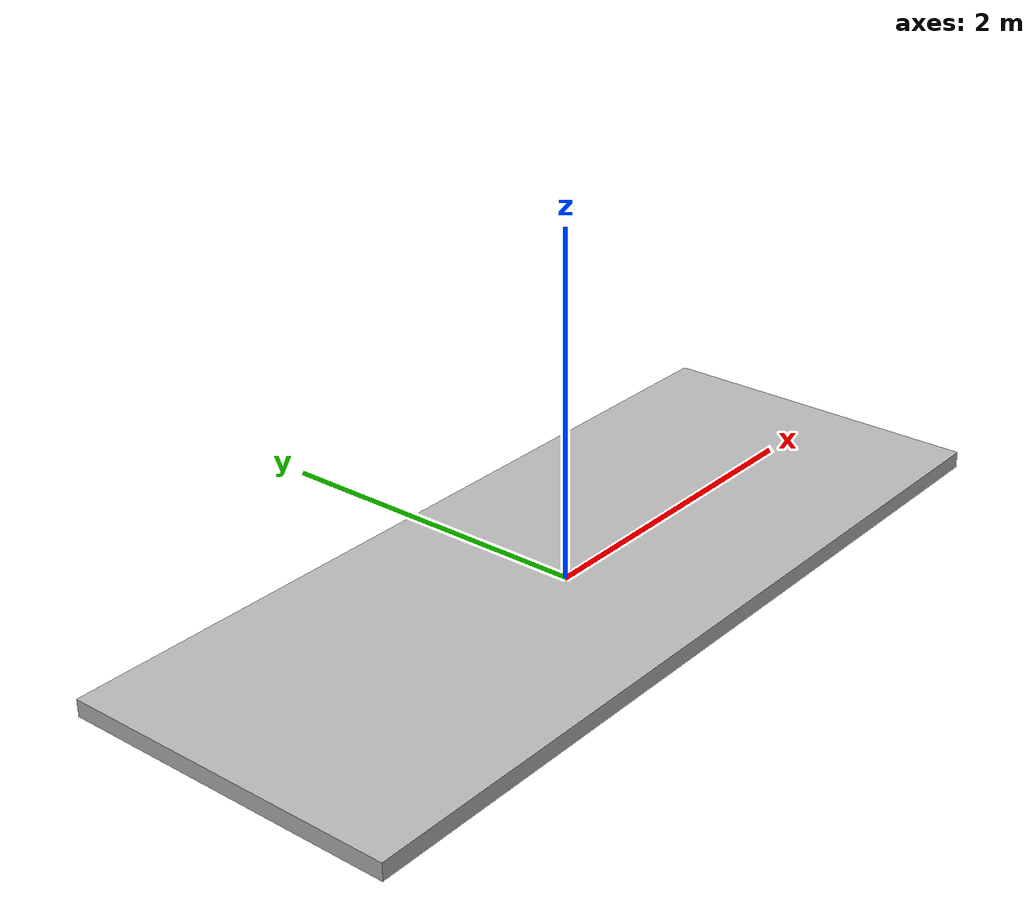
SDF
<?xml version="1.0"?>
<sdf version="1.6">
  <model name="box_robot">
    <pose>0 0 0 0 0 0</pose>

    <link name="origin">
      <pose>0 0 0 0 0 0</pose>
    </link>
    <link name="x_link">
      <pose>0 0 0 0 0 0</pose>
    </link>
    <link name="y_link">
      <pose>0 0 0 0 0 0</pose>
    </link>
    <link name="theta_link">
      <pose>0 0 0 0 0 0</pose>
    </link>
    <link name="box_link">
      <pose>0 0 0.05 0 0 0</pose>
      <visual name="visual_0">
	<geometry>
	  <box>
	    <size>5 2 0.1</size>
	  </box>
	</geometry>
	<material>
	  <script>
	    <uri>model://box_robot/materials/scripts/box_skin.material</uri>
	    <name>BoxSkin/Image</name>
	  </script>
	</material>
      </visual>
    </link>

    <joint name="world_joint" type="fixed">
      <parent>world</parent>
      <child>origin</child>
    </joint>
    <joint name="x_joint" type="prismatic">
      <parent>origin</parent>
      <child>x_link</child>
      <axis>
	<xyz>1.0 0 0</xyz>
      </axis>
    </joint>
    <joint name="y_joint" type="prismatic">
      <parent>x_link</parent>
      <child>y_link</child>
      <axis>
	<xyz>0 1.0 0</xyz>
      </axis>
    </joint>
    <joint name="theta_joint" type="revolute">
      <parent>y_link</parent>
      <child>theta_link</child>
      <axis>
	<xyz>0 0 1.0</xyz>
      </axis>
    </joint>
    <joint name="box_joint" type="fixed">
      <parent>theta_link</parent>
      <child>box_link</child>
    </joint>
  </model>
</sdf>
